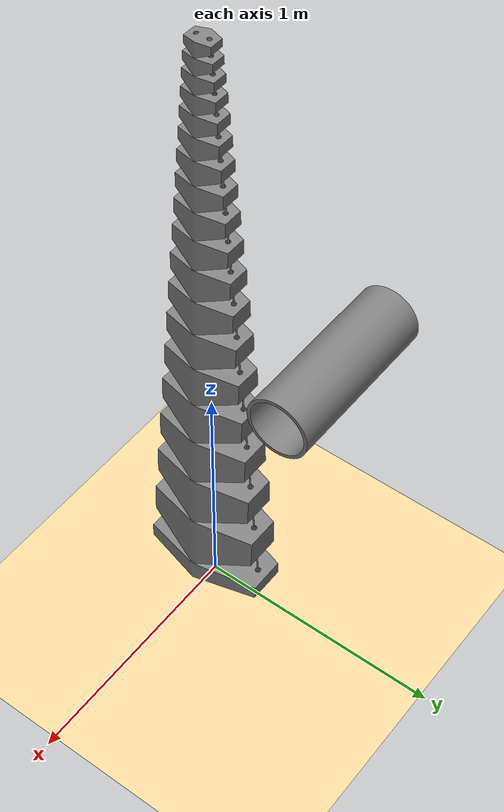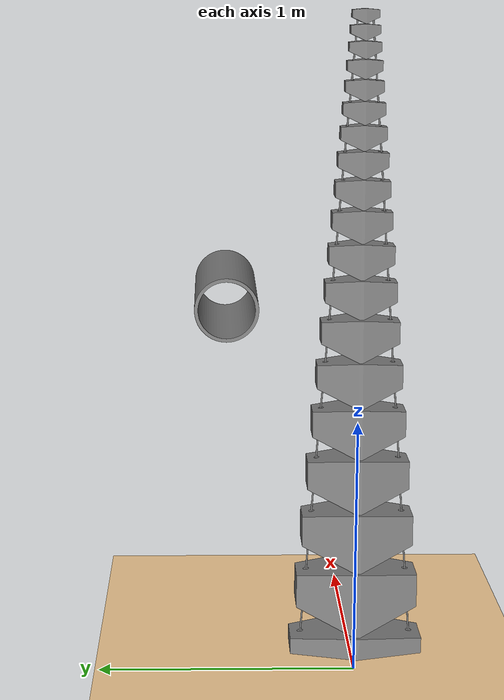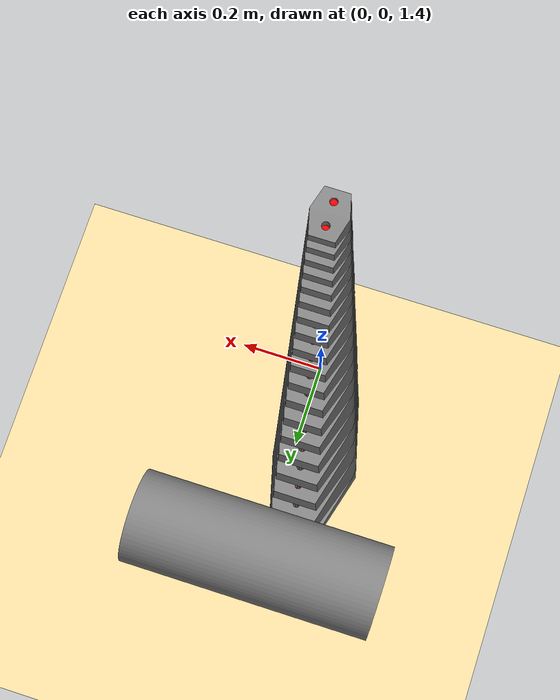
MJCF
<mujoco model="spirob">
    <compiler angle="radian" meshdir="C:\Users\secre\Documents\GitHub\TwoString\twoStringSTL"/>

    <asset>
        <!-- All your meshes -->
        <mesh file="TwoString1.STL" />
        <mesh file="TwoString2.STL" />
        <mesh file="TwoString3.STL" />
        <mesh file="TwoString4.STL" />
        <mesh file="TwoString5.STL" />
        <mesh file="TwoString6.STL" />
        <mesh file="TwoString7.STL" />
        <mesh file="TwoString8.STL" />
        <mesh file="TwoString9.STL" />
        <mesh file="TwoString10.STL" />
        <mesh file="TwoString11.STL" />
        <mesh file="TwoString12.STL" />
        <mesh file="TwoString13.STL" />
        <mesh file="TwoString14.STL" />
        <mesh file="TwoString15.STL" />
        <mesh file="TwoString16.STL" />
        <mesh file="TwoString17.STL" />
        <mesh file="TwoString18.STL" />
        <mesh file="TwoString19.STL" />
        <mesh file="asdfasdf.STL" scale="0.02 0.02 0.02" />
    </asset>

    <worldbody>
        <!-- Light and floor -->
        <light directional="true" pos="-0.5 0.5 3" dir="0 0 -1" />
        <geom name="floor" pos="0 0 0.1" size="1 1 1" type="plane" rgba="1 0.83 0.61 0.5"/>

        <!-- 1) Coral in its own top-level body -->
        <body name="coral" pos="0 0.5 1.5" euler="0 0 1.5708">
            <joint name="coral_joint" type="free" />
            <geom name="coral_geom" type="mesh" mesh="asdfasdf" pos="0 0 0" contype="1" conaffinity="1" friction="0.8 0.2 0.05"/>
            <inertial pos="0 0 0" mass="0.5" diaginertia="0.05 0.05 0.05"/>
        </body>

        <!-- 2) Entire chain in a separate top-level body -->
        <body name="base" pos="0 0 0.1">

            <!-- segment1 -->
            <geom name="segment1" type="mesh" mesh="TwoString1" pos="0 0 0" contype="1" conaffinity="1" friction="1 1 1"/>
            <inertial pos="0 0 0" mass="0.01" diaginertia="0.1 0.1 0.1"/>
            <site name="cable_anchor1" pos="0 0.215724 0.004246" size="0.01" rgba="1 0 0 1"/>
            <site name="cable2_anchor1" pos="0 -0.215724 0.004246" size="0.01" rgba="1 0 0 1"/>

            <body name="segment2" pos="0 0 0">
                <joint name="joint2" type="ball" pos="0 0 0.087206" stiffness="300" damping="5"/>
                <geom name="segment2" type="mesh" mesh="TwoString2" pos="0 0 0" contype="1" conaffinity="1" friction="1 1 1"/>
                <inertial pos="0 0 0" mass="0.01" diaginertia="0.1 0.1 0.1"/>
                <site name="cable_anchor2" pos="0 0.196938 0.246226" size="0.01" rgba="1 0 0 1"/>
                <site name="cable2_anchor2" pos="0 -0.196938 0.246226" size="0.01" rgba="1 0 0 1"/>

                <body name="segment3" pos="0 0 0">
                    <joint name="joint3" type="ball" pos="0 0 0.341718" stiffness="275" damping="5"/>
                    <geom name="segment3" type="mesh" mesh="TwoString3" pos="0 0 0" contype="1" conaffinity="1" friction="1 1 1"/>
                    <inertial pos="0 0 0" mass="0.01" diaginertia="0.1 0.1 0.1"/>
                    <site name="cable_anchor3" pos="0 0.177578 0.489842" size="0.01" rgba="1 0 0 1"/>
                    <site name="cable2_anchor3" pos="0 -0.177578 0.489842" size="0.01" rgba="1 0 0 1"/>

                    <body name="segment4" pos="0 0 0">
                        <joint name="joint4" type="ball" pos="0 0 0.573951" stiffness="250" damping="5"/>
                        <geom name="segment4" type="mesh" mesh="TwoString4" pos="0 0 0" contype="1" conaffinity="1" friction="1 1 1"/>
                        <inertial pos="0 0 0" mass="0.01" diaginertia="0.1 0.1 0.1"/>
                        <site name="cable_anchor4" pos="0 0.161404 0.708246" size="0.01" rgba="1 0 0 1"/>
                        <site name="cable2_anchor4" pos="0 -0.161404 0.708246" size="0.01" rgba="1 0 0 1"/>

                        <body name="segment5" pos="0 0 0">
                            <joint name="joint5" type="ball" pos="0 0 0.785344" stiffness="225" damping="5"/>
                            <geom name="segment5" type="mesh" mesh="TwoString5" pos="0 0 0" contype="1" conaffinity="1" friction="1 1 1"/>
                            <inertial pos="0 0 0" mass="0.01" diaginertia="0.1 0.1 0.1"/>
                            <site name="cable_anchor5" pos="0 0.146931 0.90759" size="0.01" rgba="1 0 0 1"/>
                            <site name="cable2_anchor5" pos="0 -0.146931 0.90759" size="0.01" rgba="1 0 0 1"/>

                            <body name="segment6" pos="0 0 0">
                                <joint name="joint6" type="ball" pos="0 0 0.979154" stiffness="200" damping="5"/>
                                <geom name="segment6" type="mesh" mesh="TwoString6" pos="0 0 0" contype="1" conaffinity="1" friction="1 1 1"/>
                                <inertial pos="0 0 0" mass="0.01" diaginertia="0.1 0.1 0.1"/>
                                <site name="cable_anchor6" pos="0 0.130886 1.08744" size="0.01" rgba="1 0 0 1"/>
                                <site name="cable2_anchor6" pos="0 -0.130886 1.08744" size="0.01" rgba="1 0 0 1"/>

                                <body name="segment7" pos="0 0 0">
                                    <joint name="joint7" type="ball" pos="0 0 1.15587" stiffness="180" damping="5"/>
                                    <geom name="segment7" type="mesh" mesh="TwoString7" pos="0 0 0" contype="1" conaffinity="1" friction="1 1 1"/>
                                    <inertial pos="0 0 0" mass="0.01" diaginertia="0.1 0.1 0.1"/>
                                    <site name="cable_anchor7" pos="0 0.118223 1.25331" size="0.01" rgba="1 0 0 1"/>
                                    <site name="cable2_anchor7" pos="0 -0.118223 1.25331" size="0.01" rgba="1 0 0 1"/>

                                    <body name="segment8" pos="0 0 0">
                                        <joint name="joint8" type="ball" pos="0 0 1.31703" stiffness="160" damping="5"/>
                                        <geom name="segment8" type="mesh" mesh="TwoString8" pos="0 0 0" contype="1" conaffinity="1" friction="1 1 1"/>
                                        <inertial pos="0 0 0" mass="0.01" diaginertia="0.1 0.1 0.1"/>
                                        <site name="cable_anchor8" pos="0 0.106827 1.40347" size="0.01" rgba="1 0 0 1"/>
                                        <site name="cable2_anchor8" pos="0 -0.106827 1.40347" size="0.01" rgba="1 0 0 1"/>

                                        <body name="segment9" pos="0 0 0">
                                            <joint name="joint9" type="ball" pos="0 0 1.46327" stiffness="140" damping="5"/>
                                            <geom name="segment9" type="mesh" mesh="TwoString9" pos="0 0 0" contype="1" conaffinity="1" friction="1 1 1"/>
                                            <inertial pos="0 0 0" mass="0.01" diaginertia="0.1 0.1 0.1"/>
                                            <site name="cable_anchor9" pos="0 0.095196 1.54547" size="0.01" rgba="1 0 0 1"/>
                                            <site name="cable2_anchor9" pos="0 -0.095196 1.54547" size="0.01" rgba="1 0 0 1"/>

                                            <body name="segment10" pos="0 0 0">
                                                <joint name="joint10" type="ball" pos="0 0 1.5971" stiffness="120" damping="5"/>
                                                <geom name="segment10" type="mesh" mesh="TwoString10" pos="0 0 0" contype="1" conaffinity="1" friction="1 1 1"/>
                                                <inertial pos="0 0 0" mass="0.01" diaginertia="0.1 0.1 0.1"/>
                                                <site name="cable_anchor10" pos="0 0.085396 1.6723" size="0.01" rgba="1 0 0 1"/>
                                                <site name="cable2_anchor10" pos="0 -0.085396 1.6723" size="0.01" rgba="1 0 0 1"/>

                                                <body name="segment11" pos="0 0 0">
                                                    <joint name="joint11" type="ball" pos="0 0 1.71956" stiffness="100" damping="5"/>
                                                    <geom name="segment11" type="mesh" mesh="TwoString11" pos="0 0 0" contype="1" conaffinity="1" friction="1 1 1"/>
                                                    <inertial pos="0 0 0" mass="0.01" diaginertia="0.1 0.1 0.1"/>
                                                    <site name="cable_anchor11" pos="0 0.077382 1.78859" size="0.01" rgba="1 0 0 1"/>
                                                    <site name="cable2_anchor11" pos="0 -0.077382 1.78859" size="0.01" rgba="1 0 0 1"/>

                                                    <body name="segment12" pos="0 0 0">
                                                        <joint name="joint12" type="ball" pos="0 0 1.83147" stiffness="90" damping="5"/>
                                                        <geom name="segment12" type="mesh" mesh="TwoString12" pos="0 0 0" contype="1" conaffinity="1" friction="1 1 1"/>
                                                        <inertial pos="0 0 0" mass="0.01" diaginertia="0.1 0.1 0.1"/>
                                                        <site name="cable_anchor12" pos="0 0.068901 1.89233" size="0.01" rgba="1 0 0 1"/>
                                                        <site name="cable2_anchor12" pos="0 -0.068901 1.89233" size="0.01" rgba="1 0 0 1"/>

                                                        <body name="segment13" pos="0 0 0">
                                                            <joint name="joint13" type="ball" pos="0 0 1.93331" stiffness="85" damping="5"/>
                                                            <geom name="segment13" type="mesh" mesh="TwoString13" pos="0 0 0" contype="1" conaffinity="1" friction="1 1 1"/>
                                                            <inertial pos="0 0 0" mass="0.01" diaginertia="0.1 0.1 0.1"/>
                                                            <site name="cable_anchor13" pos="0 0.061429 1.98839" size="0.01" rgba="1 0 0 1"/>
                                                            <site name="cable2_anchor13" pos="0 -0.061429 1.98839" size="0.01" rgba="1 0 0 1"/>

                                                            <body name="segment14" pos="0 0 0">
                                                                <joint name="joint14" type="ball" pos="0 0 2.02623" stiffness="80" damping="5"/>
                                                                <geom name="segment14" type="mesh" mesh="TwoString14" pos="0 0 0" contype="1" conaffinity="1" friction="1 1 1"/>
                                                                <inertial pos="0 0 0" mass="0.01" diaginertia="0.1 0.1 0.1"/>
                                                                <site name="cable_anchor14" pos="0 0.053719 2.0779" size="0.01" rgba="1 0 0 1"/>
                                                                <site name="cable2_anchor14" pos="0 -0.053719 2.0779" size="0.01" rgba="1 0 0 1"/>

                                                                <body name="segment15" pos="0 0 0">
                                                                    <joint name="joint15" type="ball" pos="0 0 2.11129" stiffness="75" damping="5"/>
                                                                    <geom name="segment15" type="mesh" mesh="TwoString15" pos="0 0 0" contype="1" conaffinity="1" friction="1 1 1"/>
                                                                    <inertial pos="0 0 0" mass="0.01" diaginertia="0.1 0.1 0.1"/>
                                                                    <site name="cable_anchor15" pos="0 0.047341 2.15696" size="0.01" rgba="1 0 0 1"/>
                                                                    <site name="cable2_anchor15" pos="0 -0.047341 2.15696" size="0.01" rgba="1 0 0 1"/>

                                                                    <body name="segment16" pos="0 0 0">
                                                                        <joint name="joint16" type="ball" pos="0 0 2.18878" stiffness="70" damping="5"/>
                                                                        <geom name="segment16" type="mesh" mesh="TwoString16" pos="0 0 0" contype="1" conaffinity="1" friction="1 1 1"/>
                                                                        <inertial pos="0 0 0" mass="0.01" diaginertia="0.1 0.1 0.1"/>
                                                                        <site name="cable_anchor16" pos="0 0.041663 2.22831" size="0.01" rgba="1 0 0 1"/>
                                                                        <site name="cable2_anchor16" pos="0 -0.041663 2.22831" size="0.01" rgba="1 0 0 1"/>

                                                                        <body name="segment17" pos="0 0 0">
                                                                            <joint name="joint17" type="ball" pos="0 0 2.25939" stiffness="65" damping="5"/>
                                                                            <geom name="segment17" type="mesh" mesh="TwoString17" pos="0 0 0" contype="1" conaffinity="1" friction="1 1 1"/>
                                                                            <inertial pos="0 0 0" mass="0.01" diaginertia="0.1 0.1 0.1"/>
                                                                            <site name="cable_anchor17" pos="0 0.036056 2.29833" size="0.01" rgba="1 0 0 1"/>
                                                                            <site name="cable2_anchor17" pos="0 -0.036056 2.29833" size="0.01" rgba="1 0 0 1"/>

                                                                            <body name="segment18" pos="0 0 0">
                                                                                <joint name="joint18" type="ball" pos="0 0 2.32365" stiffness="60" damping="5"/>
                                                                                <geom name="segment18" type="mesh" mesh="TwoString18" pos="0 0 0" contype="1" conaffinity="1" friction="1 1 1"/>
                                                                                <inertial pos="0 0 0" mass="0.01" diaginertia="0.1 0.1 0.1"/>
                                                                                <site name="cable_anchor18" pos="0 0.030869 2.35889" size="0.01" rgba="1 0 0 1"/>
                                                                                <site name="cable2_anchor18" pos="0 -0.030869 2.35889" size="0.01" rgba="1 0 0 1"/>

                                                                                <body name="segment19" pos="0 0 0">
                                                                                    <joint name="joint19" type="ball" pos="0 0 2.38202" stiffness="58" damping="5"/>
                                                                                    <geom name="segment19" type="mesh" mesh="TwoString19" pos="0 0 0" contype="1" conaffinity="1" friction="1 1 1"/>
                                                                                    <inertial pos="0 0 0" mass="0.01" diaginertia="0.1 0.1 0.1"/>
                                                                                    <site name="cable_anchor19" pos="0 0.026804 2.41412" size="0.01" rgba="1 0 0 1"/>
                                                                                    <site name="cable2_anchor19" pos="0 -0.026804 2.41412" size="0.01" rgba="1 0 0 1"/>
                                                                                </body> <!-- closes segment19 -->
                                                                            </body> <!-- closes segment18 -->
                                                                        </body> <!-- closes segment17 -->
                                                                    </body> <!-- closes segment16 -->
                                                                </body> <!-- closes segment15 -->
                                                            </body> <!-- closes segment14 -->
                                                        </body> <!-- closes segment13 -->
                                                    </body> <!-- closes segment12 -->
                                                </body> <!-- closes segment11 -->
                                            </body> <!-- closes segment10 -->
                                        </body> <!-- closes segment9 -->
                                    </body> <!-- closes segment8 -->
                                </body> <!-- closes segment7 -->
                            </body> <!-- closes segment6 -->
                        </body> <!-- closes segment5 -->
                    </body> <!-- closes segment4 -->
                </body> <!-- closes segment3 -->
            </body> <!-- closes segment2 -->
        </body> <!-- closes base -->
    </worldbody>

    <tendon>
        <spatial name="cable1" stiffness="200" damping="500">
            <site site="cable_anchor1" />
            <site site="cable_anchor2" />
            <site site="cable_anchor3" />
            <site site="cable_anchor4" />
            <site site="cable_anchor5" />
            <site site="cable_anchor6" />
            <site site="cable_anchor7" />
            <site site="cable_anchor8" />
            <site site="cable_anchor9" />
            <site site="cable_anchor10" />
            <site site="cable_anchor11" />
            <site site="cable_anchor12" />
            <site site="cable_anchor13" />
            <site site="cable_anchor14" />
            <site site="cable_anchor15" />
            <site site="cable_anchor16" />
            <site site="cable_anchor17" />
            <site site="cable_anchor18" />
            <site site="cable_anchor19" />
        </spatial>

        <spatial name="cable2" stiffness="200" damping="500">
            <site site="cable2_anchor1" />
            <site site="cable2_anchor2" />
            <site site="cable2_anchor3" />
            <site site="cable2_anchor4" />
            <site site="cable2_anchor5" />
            <site site="cable2_anchor6" />
            <site site="cable2_anchor7" />
            <site site="cable2_anchor8" />
            <site site="cable2_anchor9" />
            <site site="cable2_anchor10" />
            <site site="cable2_anchor11" />
            <site site="cable2_anchor12" />
            <site site="cable2_anchor13" />
            <site site="cable2_anchor14" />
            <site site="cable2_anchor15" />
            <site site="cable2_anchor16" />
            <site site="cable2_anchor17" />
            <site site="cable2_anchor18" />
            <site site="cable2_anchor19" />
        </spatial>
    </tendon>

    <contact>
        <pair geom1="segment1" geom2="segment2"/>
        <pair geom1="segment2" geom2="segment3"/>
        <pair geom1="segment3" geom2="segment4"/>
        <pair geom1="segment4" geom2="segment5"/>
        <pair geom1="segment5" geom2="segment6"/>
        <pair geom1="segment6" geom2="segment7"/>
        <pair geom1="segment7" geom2="segment8"/>
        <pair geom1="segment8" geom2="segment9"/>
        <pair geom1="segment9" geom2="segment10"/>
        <pair geom1="segment10" geom2="segment11"/>
        <pair geom1="segment11" geom2="segment12"/>
        <pair geom1="segment12" geom2="segment13"/>
        <pair geom1="segment13" geom2="segment14"/>
        <pair geom1="segment14" geom2="segment15"/>
        <pair geom1="segment15" geom2="segment16"/>
        <pair geom1="segment16" geom2="segment17"/>
        <pair geom1="segment17" geom2="segment18"/>
        <pair geom1="segment18" geom2="segment19"/>
    </contact>

    <actuator>
        <motor name="cable_motor" tendon="cable1" gear="1500"/>
        <motor name="cable_motor2" tendon="cable2" gear="1500"/>
    </actuator>
</mujoco>
